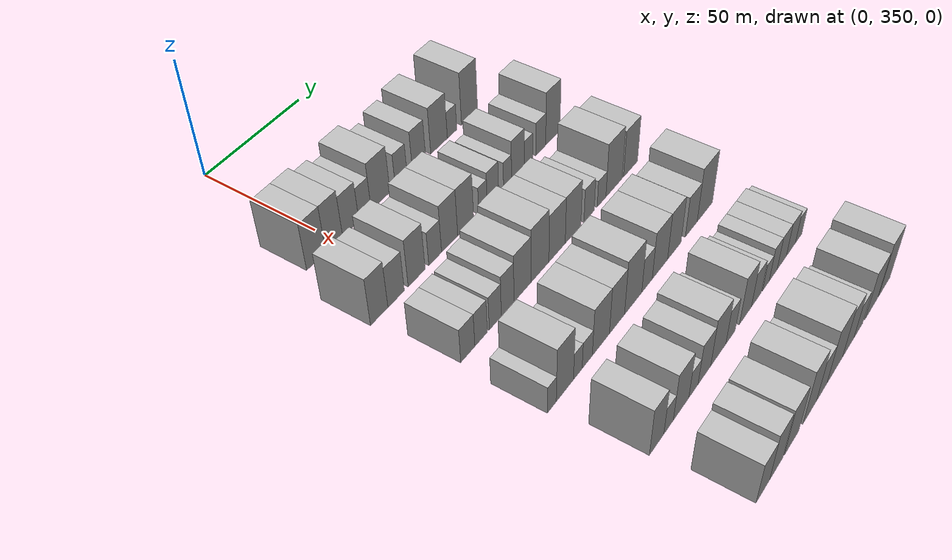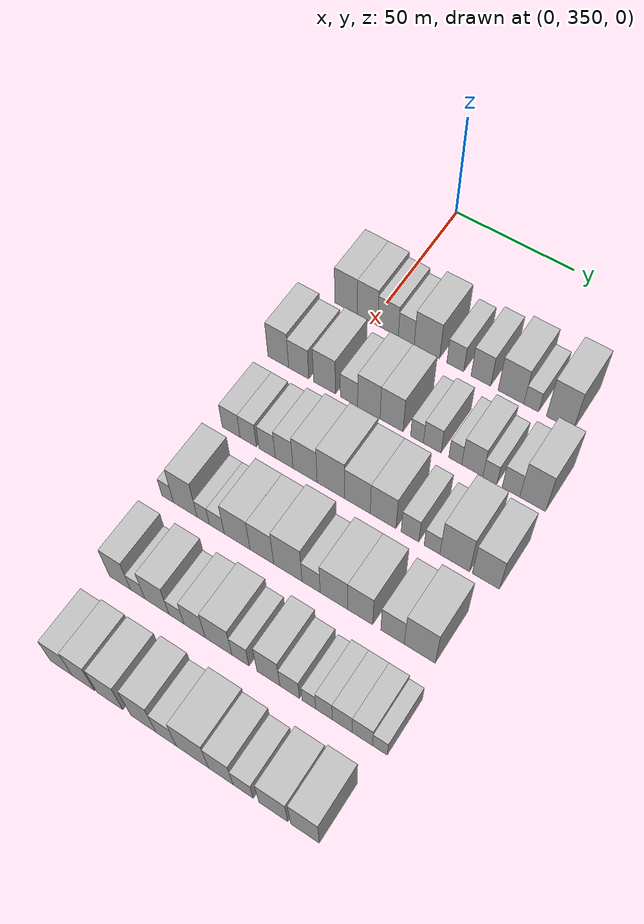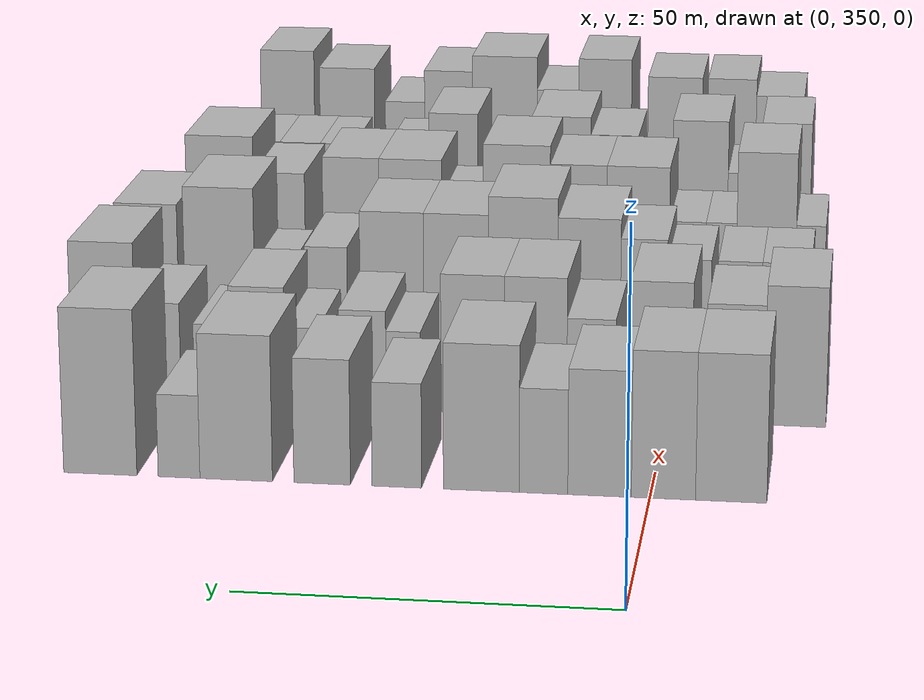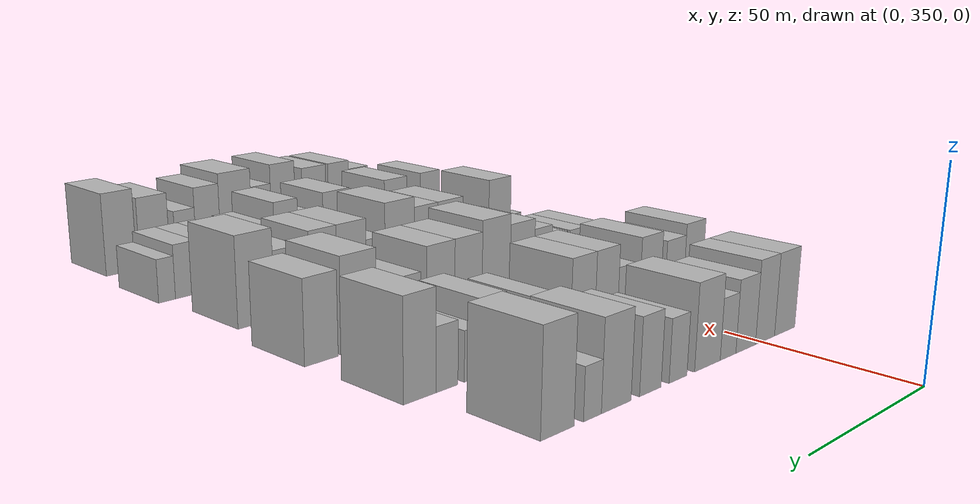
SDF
<sdf version="1.6">
 <world name="default">
  <model name="building_97">
   <static>1</static>
   <pose>50.0000 339.1069 0 0.000000 0.000000 0.000000</pose>
   <link name="link">
    <pose>0 0 10.50 0 0 0</pose>
    <collision name="collision"><geometry><box><size>20.0000 9.6296 21.0000</size></box></geometry></collision>
    <visual name="visual">
     <cast_shadows>0</cast_shadows>
     <geometry><box><size>20.0000 9.6296 21.0000</size></box></geometry>
     <material>
      <script>
       <uri>model://HANNAS_wall/materials/scripts</uri>
       <uri>model://HANNAS_wall/materials/textures</uri>
       <name>vrc/HANNAS_wall</name>
      </script>
     </material>
    </visual>
   </link>
  </model>
  <model name="building_98">
   <static>1</static>
   <pose>50.0000 348.2786 0 0.000000 0.000000 0.000000</pose>
   <link name="link">
    <pose>0 0 10.50 0 0 0</pose>
    <collision name="collision"><geometry><box><size>20.0000 8.7138 21.0000</size></box></geometry></collision>
    <visual name="visual">
     <cast_shadows>0</cast_shadows>
     <geometry><box><size>20.0000 8.7138 21.0000</size></box></geometry>
     <material>
      <script>
       <uri>model://HANNAS_wall/materials/scripts</uri>
       <uri>model://HANNAS_wall/materials/textures</uri>
       <name>vrc/HANNAS_wall</name>
      </script>
     </material>
    </visual>
   </link>
  </model>
  <model name="building_99">
   <static>1</static>
   <pose>50.0000 356.9619 0 0.000000 0.000000 0.000000</pose>
   <link name="link">
    <pose>0 0 9.00 0 0 0</pose>
    <collision name="collision"><geometry><box><size>20.0000 8.6529 18.0000</size></box></geometry></collision>
    <visual name="visual">
     <cast_shadows>0</cast_shadows>
     <geometry><box><size>20.0000 8.6529 18.0000</size></box></geometry>
     <material>
      <script>
       <uri>model://HANNAS_wall/materials/scripts</uri>
       <uri>model://HANNAS_wall/materials/textures</uri>
       <name>vrc/HANNAS_wall</name>
      </script>
     </material>
    </visual>
   </link>
  </model>
  <model name="building_100">
   <static>1</static>
   <pose>50.0000 364.6082 0 0.000000 0.000000 0.000000</pose>
   <link name="link">
    <pose>0 0 7.50 0 0 0</pose>
    <collision name="collision"><geometry><box><size>20.0000 6.6396 15.0000</size></box></geometry></collision>
    <visual name="visual">
     <cast_shadows>0</cast_shadows>
     <geometry><box><size>20.0000 6.6396 15.0000</size></box></geometry>
     <material>
      <script>
       <uri>model://HANNAS_wall/materials/scripts</uri>
       <uri>model://HANNAS_wall/materials/textures</uri>
       <name>vrc/HANNAS_wall</name>
      </script>
     </material>
    </visual>
   </link>
  </model>
  <model name="building_101">
   <static>1</static>
   <pose>50.0000 373.1488 0 0.000000 0.000000 0.000000</pose>
   <link name="link">
    <pose>0 0 10.50 0 0 0</pose>
    <collision name="collision"><geometry><box><size>20.0000 10.4415 21.0000</size></box></geometry></collision>
    <visual name="visual">
     <cast_shadows>0</cast_shadows>
     <geometry><box><size>20.0000 10.4415 21.0000</size></box></geometry>
     <material>
      <script>
       <uri>model://HANNAS_wall/materials/scripts</uri>
       <uri>model://HANNAS_wall/materials/textures</uri>
       <name>vrc/HANNAS_wall</name>
      </script>
     </material>
    </visual>
   </link>
  </model>
  <model name="building_102">
   <static>1</static>
   <pose>50.0000 384.7958 0 0.000000 0.000000 0.000000</pose>
   <link name="link">
    <pose>0 0 7.50 0 0 0</pose>
    <collision name="collision"><geometry><box><size>20.0000 6.8526 15.0000</size></box></geometry></collision>
    <visual name="visual">
     <cast_shadows>0</cast_shadows>
     <geometry><box><size>20.0000 6.8526 15.0000</size></box></geometry>
     <material>
      <script>
       <uri>model://HANNAS_wall/materials/scripts</uri>
       <uri>model://HANNAS_wall/materials/textures</uri>
       <name>vrc/HANNAS_wall</name>
      </script>
     </material>
    </visual>
   </link>
  </model>
  <model name="building_103">
   <static>1</static>
   <pose>50.0000 395.1527 0 0.000000 0.000000 0.000000</pose>
   <link name="link">
    <pose>0 0 9.00 0 0 0</pose>
    <collision name="collision"><geometry><box><size>20.0000 7.8612 18.0000</size></box></geometry></collision>
    <visual name="visual">
     <cast_shadows>0</cast_shadows>
     <geometry><box><size>20.0000 7.8612 18.0000</size></box></geometry>
     <material>
      <script>
       <uri>model://HANNAS_wall/materials/scripts</uri>
       <uri>model://HANNAS_wall/materials/textures</uri>
       <name>vrc/HANNAS_wall</name>
      </script>
     </material>
    </visual>
   </link>
  </model>
  <model name="building_104">
   <static>1</static>
   <pose>50.0000 407.1559 0 0.000000 0.000000 0.000000</pose>
   <link name="link">
    <pose>0 0 10.50 0 0 0</pose>
    <collision name="collision"><geometry><box><size>20.0000 10.1452 21.0000</size></box></geometry></collision>
    <visual name="visual">
     <cast_shadows>0</cast_shadows>
     <geometry><box><size>20.0000 10.1452 21.0000</size></box></geometry>
     <material>
      <script>
       <uri>model://HANNAS_wall/materials/scripts</uri>
       <uri>model://HANNAS_wall/materials/textures</uri>
       <name>vrc/HANNAS_wall</name>
      </script>
     </material>
    </visual>
   </link>
  </model>
  <model name="building_105">
   <static>1</static>
   <pose>50.0000 415.1613 0 0.000000 0.000000 0.000000</pose>
   <link name="link">
    <pose>0 0 6.00 0 0 0</pose>
    <collision name="collision"><geometry><box><size>20.0000 5.8655 12.0000</size></box></geometry></collision>
    <visual name="visual">
     <cast_shadows>0</cast_shadows>
     <geometry><box><size>20.0000 5.8655 12.0000</size></box></geometry>
     <material>
      <script>
       <uri>model://HANNAS_wall/materials/scripts</uri>
       <uri>model://HANNAS_wall/materials/textures</uri>
       <name>vrc/HANNAS_wall</name>
      </script>
     </material>
    </visual>
   </link>
  </model>
  <model name="building_106">
   <static>1</static>
   <pose>50.0000 426.2678 0 0.000000 0.000000 0.000000</pose>
   <link name="link">
    <pose>0 0 12.00 0 0 0</pose>
    <collision name="collision"><geometry><box><size>20.0000 10.3475 24.0000</size></box></geometry></collision>
    <visual name="visual">
     <cast_shadows>0</cast_shadows>
     <geometry><box><size>20.0000 10.3475 24.0000</size></box></geometry>
     <material>
      <script>
       <uri>model://HANNAS_wall/materials/scripts</uri>
       <uri>model://HANNAS_wall/materials/textures</uri>
       <name>vrc/HANNAS_wall</name>
      </script>
     </material>
    </visual>
   </link>
  </model>
  <model name="building_218">
   <static>1</static>
   <pose>82.0000 331.5340 0 0.000000 0.000000 0.000000</pose>
   <link name="link">
    <pose>0 0 10.50 0 0 0</pose>
    <collision name="collision"><geometry><box><size>20.0000 8.8198 21.0000</size></box></geometry></collision>
    <visual name="visual">
     <cast_shadows>0</cast_shadows>
     <geometry><box><size>20.0000 8.8198 21.0000</size></box></geometry>
     <material>
      <script>
       <uri>model://HANNAS_wall/materials/scripts</uri>
       <uri>model://HANNAS_wall/materials/textures</uri>
       <name>vrc/HANNAS_wall</name>
      </script>
     </material>
    </visual>
   </link>
  </model>
  <model name="building_219">
   <static>1</static>
   <pose>82.0000 340.1978 0 0.000000 0.000000 0.000000</pose>
   <link name="link">
    <pose>0 0 9.00 0 0 0</pose>
    <collision name="collision"><geometry><box><size>20.0000 8.5077 18.0000</size></box></geometry></collision>
    <visual name="visual">
     <cast_shadows>0</cast_shadows>
     <geometry><box><size>20.0000 8.5077 18.0000</size></box></geometry>
     <material>
      <script>
       <uri>model://HANNAS_wall/materials/scripts</uri>
       <uri>model://HANNAS_wall/materials/textures</uri>
       <name>vrc/HANNAS_wall</name>
      </script>
     </material>
    </visual>
   </link>
  </model>
  <model name="building_220">
   <static>1</static>
   <pose>82.0000 351.0111 0 0.000000 0.000000 0.000000</pose>
   <link name="link">
    <pose>0 0 10.50 0 0 0</pose>
    <collision name="collision"><geometry><box><size>20.0000 9.1188 21.0000</size></box></geometry></collision>
    <visual name="visual">
     <cast_shadows>0</cast_shadows>
     <geometry><box><size>20.0000 9.1188 21.0000</size></box></geometry>
     <material>
      <script>
       <uri>model://HANNAS_wall/materials/scripts</uri>
       <uri>model://HANNAS_wall/materials/textures</uri>
       <name>vrc/HANNAS_wall</name>
      </script>
     </material>
    </visual>
   </link>
  </model>
  <model name="building_221">
   <static>1</static>
   <pose>82.0000 361.1053 0 0.000000 0.000000 0.000000</pose>
   <link name="link">
    <pose>0 0 7.50 0 0 0</pose>
    <collision name="collision"><geometry><box><size>20.0000 7.0697 15.0000</size></box></geometry></collision>
    <visual name="visual">
     <cast_shadows>0</cast_shadows>
     <geometry><box><size>20.0000 7.0697 15.0000</size></box></geometry>
     <material>
      <script>
       <uri>model://HANNAS_wall/materials/scripts</uri>
       <uri>model://HANNAS_wall/materials/textures</uri>
       <name>vrc/HANNAS_wall</name>
      </script>
     </material>
    </visual>
   </link>
  </model>
  <model name="building_222">
   <static>1</static>
   <pose>82.0000 369.2116 0 0.000000 0.000000 0.000000</pose>
   <link name="link">
    <pose>0 0 10.50 0 0 0</pose>
    <collision name="collision"><geometry><box><size>20.0000 9.1430 21.0000</size></box></geometry></collision>
    <visual name="visual">
     <cast_shadows>0</cast_shadows>
     <geometry><box><size>20.0000 9.1430 21.0000</size></box></geometry>
     <material>
      <script>
       <uri>model://HANNAS_wall/materials/scripts</uri>
       <uri>model://HANNAS_wall/materials/textures</uri>
       <name>vrc/HANNAS_wall</name>
      </script>
     </material>
    </visual>
   </link>
  </model>
  <model name="building_223">
   <static>1</static>
   <pose>82.0000 378.4392 0 0.000000 0.000000 0.000000</pose>
   <link name="link">
    <pose>0 0 10.50 0 0 0</pose>
    <collision name="collision"><geometry><box><size>20.0000 9.3122 21.0000</size></box></geometry></collision>
    <visual name="visual">
     <cast_shadows>0</cast_shadows>
     <geometry><box><size>20.0000 9.3122 21.0000</size></box></geometry>
     <material>
      <script>
       <uri>model://HANNAS_wall/materials/scripts</uri>
       <uri>model://HANNAS_wall/materials/textures</uri>
       <name>vrc/HANNAS_wall</name>
      </script>
     </material>
    </visual>
   </link>
  </model>
  <model name="building_224">
   <static>1</static>
   <pose>82.0000 388.6367 0 0.000000 0.000000 0.000000</pose>
   <link name="link">
    <pose>0 0 6.00 0 0 0</pose>
    <collision name="collision"><geometry><box><size>20.0000 5.0829 12.0000</size></box></geometry></collision>
    <visual name="visual">
     <cast_shadows>0</cast_shadows>
     <geometry><box><size>20.0000 5.0829 12.0000</size></box></geometry>
     <material>
      <script>
       <uri>model://HANNAS_wall/materials/scripts</uri>
       <uri>model://HANNAS_wall/materials/textures</uri>
       <name>vrc/HANNAS_wall</name>
      </script>
     </material>
    </visual>
   </link>
  </model>
  <model name="building_225">
   <static>1</static>
   <pose>82.0000 394.6690 0 0.000000 0.000000 0.000000</pose>
   <link name="link">
    <pose>0 0 7.50 0 0 0</pose>
    <collision name="collision"><geometry><box><size>20.0000 6.9817 15.0000</size></box></geometry></collision>
    <visual name="visual">
     <cast_shadows>0</cast_shadows>
     <geometry><box><size>20.0000 6.9817 15.0000</size></box></geometry>
     <material>
      <script>
       <uri>model://HANNAS_wall/materials/scripts</uri>
       <uri>model://HANNAS_wall/materials/textures</uri>
       <name>vrc/HANNAS_wall</name>
      </script>
     </material>
    </visual>
   </link>
  </model>
  <model name="building_226">
   <static>1</static>
   <pose>82.0000 403.6852 0 0.000000 0.000000 0.000000</pose>
   <link name="link">
    <pose>0 0 6.00 0 0 0</pose>
    <collision name="collision"><geometry><box><size>20.0000 5.0506 12.0000</size></box></geometry></collision>
    <visual name="visual">
     <cast_shadows>0</cast_shadows>
     <geometry><box><size>20.0000 5.0506 12.0000</size></box></geometry>
     <material>
      <script>
       <uri>model://HANNAS_wall/materials/scripts</uri>
       <uri>model://HANNAS_wall/materials/textures</uri>
       <name>vrc/HANNAS_wall</name>
      </script>
     </material>
    </visual>
   </link>
  </model>
  <model name="building_227">
   <static>1</static>
   <pose>82.0000 410.3026 0 0.000000 0.000000 0.000000</pose>
   <link name="link">
    <pose>0 0 9.00 0 0 0</pose>
    <collision name="collision"><geometry><box><size>20.0000 8.1843 18.0000</size></box></geometry></collision>
    <visual name="visual">
     <cast_shadows>0</cast_shadows>
     <geometry><box><size>20.0000 8.1843 18.0000</size></box></geometry>
     <material>
      <script>
       <uri>model://HANNAS_wall/materials/scripts</uri>
       <uri>model://HANNAS_wall/materials/textures</uri>
       <name>vrc/HANNAS_wall</name>
      </script>
     </material>
    </visual>
   </link>
  </model>
  <model name="building_228">
   <static>1</static>
   <pose>82.0000 417.0681 0 0.000000 0.000000 0.000000</pose>
   <link name="link">
    <pose>0 0 6.00 0 0 0</pose>
    <collision name="collision"><geometry><box><size>20.0000 5.3469 12.0000</size></box></geometry></collision>
    <visual name="visual">
     <cast_shadows>0</cast_shadows>
     <geometry><box><size>20.0000 5.3469 12.0000</size></box></geometry>
     <material>
      <script>
       <uri>model://HANNAS_wall/materials/scripts</uri>
       <uri>model://HANNAS_wall/materials/textures</uri>
       <name>vrc/HANNAS_wall</name>
      </script>
     </material>
    </visual>
   </link>
  </model>
  <model name="building_229">
   <static>1</static>
   <pose>82.0000 425.0925 0 0.000000 0.000000 0.000000</pose>
   <link name="link">
    <pose>0 0 7.50 0 0 0</pose>
    <collision name="collision"><geometry><box><size>20.0000 6.7019 15.0000</size></box></geometry></collision>
    <visual name="visual">
     <cast_shadows>0</cast_shadows>
     <geometry><box><size>20.0000 6.7019 15.0000</size></box></geometry>
     <material>
      <script>
       <uri>model://HANNAS_wall/materials/scripts</uri>
       <uri>model://HANNAS_wall/materials/textures</uri>
       <name>vrc/HANNAS_wall</name>
      </script>
     </material>
    </visual>
   </link>
  </model>
  <model name="building_230">
   <static>1</static>
   <pose>82.0000 433.2831 0 0.000000 0.000000 0.000000</pose>
   <link name="link">
    <pose>0 0 12.00 0 0 0</pose>
    <collision name="collision"><geometry><box><size>20.0000 9.6793 24.0000</size></box></geometry></collision>
    <visual name="visual">
     <cast_shadows>0</cast_shadows>
     <geometry><box><size>20.0000 9.6793 24.0000</size></box></geometry>
     <material>
      <script>
       <uri>model://HANNAS_wall/materials/scripts</uri>
       <uri>model://HANNAS_wall/materials/textures</uri>
       <name>vrc/HANNAS_wall</name>
      </script>
     </material>
    </visual>
   </link>
  </model>
  <model name="building_336">
   <static>1</static>
   <pose>114.0000 334.1204 0 0.000000 0.000000 0.000000</pose>
   <link name="link">
    <pose>0 0 7.50 0 0 0</pose>
    <collision name="collision"><geometry><box><size>20.0000 7.4466 15.0000</size></box></geometry></collision>
    <visual name="visual">
     <cast_shadows>0</cast_shadows>
     <geometry><box><size>20.0000 7.4466 15.0000</size></box></geometry>
     <material>
      <script>
       <uri>model://HANNAS_wall/materials/scripts</uri>
       <uri>model://HANNAS_wall/materials/textures</uri>
       <name>vrc/HANNAS_wall</name>
      </script>
     </material>
    </visual>
   </link>
  </model>
  <model name="building_337">
   <static>1</static>
   <pose>114.0000 341.2328 0 0.000000 0.000000 0.000000</pose>
   <link name="link">
    <pose>0 0 7.50 0 0 0</pose>
    <collision name="collision"><geometry><box><size>20.0000 6.7783 15.0000</size></box></geometry></collision>
    <visual name="visual">
     <cast_shadows>0</cast_shadows>
     <geometry><box><size>20.0000 6.7783 15.0000</size></box></geometry>
     <material>
      <script>
       <uri>model://HANNAS_wall/materials/scripts</uri>
       <uri>model://HANNAS_wall/materials/textures</uri>
       <name>vrc/HANNAS_wall</name>
      </script>
     </material>
    </visual>
   </link>
  </model>
  <model name="building_338">
   <static>1</static>
   <pose>114.0000 348.9783 0 0.000000 0.000000 0.000000</pose>
   <link name="link">
    <pose>0 0 7.50 0 0 0</pose>
    <collision name="collision"><geometry><box><size>20.0000 6.7126 15.0000</size></box></geometry></collision>
    <visual name="visual">
     <cast_shadows>0</cast_shadows>
     <geometry><box><size>20.0000 6.7126 15.0000</size></box></geometry>
     <material>
      <script>
       <uri>model://HANNAS_wall/materials/scripts</uri>
       <uri>model://HANNAS_wall/materials/textures</uri>
       <name>vrc/HANNAS_wall</name>
      </script>
     </material>
    </visual>
   </link>
  </model>
  <model name="building_339">
   <static>1</static>
   <pose>114.0000 355.9404 0 0.000000 0.000000 0.000000</pose>
   <link name="link">
    <pose>0 0 9.00 0 0 0</pose>
    <collision name="collision"><geometry><box><size>20.0000 7.2117 18.0000</size></box></geometry></collision>
    <visual name="visual">
     <cast_shadows>0</cast_shadows>
     <geometry><box><size>20.0000 7.2117 18.0000</size></box></geometry>
     <material>
      <script>
       <uri>model://HANNAS_wall/materials/scripts</uri>
       <uri>model://HANNAS_wall/materials/textures</uri>
       <name>vrc/HANNAS_wall</name>
      </script>
     </material>
    </visual>
   </link>
  </model>
  <model name="building_340">
   <static>1</static>
   <pose>114.0000 364.4156 0 0.000000 0.000000 0.000000</pose>
   <link name="link">
    <pose>0 0 10.50 0 0 0</pose>
    <collision name="collision"><geometry><box><size>20.0000 9.7387 21.0000</size></box></geometry></collision>
    <visual name="visual">
     <cast_shadows>0</cast_shadows>
     <geometry><box><size>20.0000 9.7387 21.0000</size></box></geometry>
     <material>
      <script>
       <uri>model://HANNAS_wall/materials/scripts</uri>
       <uri>model://HANNAS_wall/materials/textures</uri>
       <name>vrc/HANNAS_wall</name>
      </script>
     </material>
    </visual>
   </link>
  </model>
  <model name="building_341">
   <static>1</static>
   <pose>114.0000 374.6868 0 0.000000 0.000000 0.000000</pose>
   <link name="link">
    <pose>0 0 12.00 0 0 0</pose>
    <collision name="collision"><geometry><box><size>20.0000 10.8037 24.0000</size></box></geometry></collision>
    <visual name="visual">
     <cast_shadows>0</cast_shadows>
     <geometry><box><size>20.0000 10.8037 24.0000</size></box></geometry>
     <material>
      <script>
       <uri>model://HANNAS_wall/materials/scripts</uri>
       <uri>model://HANNAS_wall/materials/textures</uri>
       <name>vrc/HANNAS_wall</name>
      </script>
     </material>
    </visual>
   </link>
  </model>
  <model name="building_342">
   <static>1</static>
   <pose>114.0000 385.1393 0 0.000000 0.000000 0.000000</pose>
   <link name="link">
    <pose>0 0 10.50 0 0 0</pose>
    <collision name="collision"><geometry><box><size>20.0000 10.1014 21.0000</size></box></geometry></collision>
    <visual name="visual">
     <cast_shadows>0</cast_shadows>
     <geometry><box><size>20.0000 10.1014 21.0000</size></box></geometry>
     <material>
      <script>
       <uri>model://HANNAS_wall/materials/scripts</uri>
       <uri>model://HANNAS_wall/materials/textures</uri>
       <name>vrc/HANNAS_wall</name>
      </script>
     </material>
    </visual>
   </link>
  </model>
  <model name="building_343">
   <static>1</static>
   <pose>114.0000 395.1781 0 0.000000 0.000000 0.000000</pose>
   <link name="link">
    <pose>0 0 10.50 0 0 0</pose>
    <collision name="collision"><geometry><box><size>20.0000 9.9763 21.0000</size></box></geometry></collision>
    <visual name="visual">
     <cast_shadows>0</cast_shadows>
     <geometry><box><size>20.0000 9.9763 21.0000</size></box></geometry>
     <material>
      <script>
       <uri>model://HANNAS_wall/materials/scripts</uri>
       <uri>model://HANNAS_wall/materials/textures</uri>
       <name>vrc/HANNAS_wall</name>
      </script>
     </material>
    </visual>
   </link>
  </model>
  <model name="building_344">
   <static>1</static>
   <pose>114.0000 405.5335 0 0.000000 0.000000 0.000000</pose>
   <link name="link">
    <pose>0 0 7.50 0 0 0</pose>
    <collision name="collision"><geometry><box><size>20.0000 6.7344 15.0000</size></box></geometry></collision>
    <visual name="visual">
     <cast_shadows>0</cast_shadows>
     <geometry><box><size>20.0000 6.7344 15.0000</size></box></geometry>
     <material>
      <script>
       <uri>model://HANNAS_wall/materials/scripts</uri>
       <uri>model://HANNAS_wall/materials/textures</uri>
       <name>vrc/HANNAS_wall</name>
      </script>
     </material>
    </visual>
   </link>
  </model>
  <model name="building_345">
   <static>1</static>
   <pose>114.0000 413.8528 0 0.000000 0.000000 0.000000</pose>
   <link name="link">
    <pose>0 0 6.00 0 0 0</pose>
    <collision name="collision"><geometry><box><size>20.0000 5.9043 12.0000</size></box></geometry></collision>
    <visual name="visual">
     <cast_shadows>0</cast_shadows>
     <geometry><box><size>20.0000 5.9043 12.0000</size></box></geometry>
     <material>
      <script>
       <uri>model://HANNAS_wall/materials/scripts</uri>
       <uri>model://HANNAS_wall/materials/textures</uri>
       <name>vrc/HANNAS_wall</name>
      </script>
     </material>
    </visual>
   </link>
  </model>
  <model name="building_346">
   <static>1</static>
   <pose>114.0000 422.3703 0 0.000000 0.000000 0.000000</pose>
   <link name="link">
    <pose>0 0 12.00 0 0 0</pose>
    <collision name="collision"><geometry><box><size>20.0000 11.1306 24.0000</size></box></geometry></collision>
    <visual name="visual">
     <cast_shadows>0</cast_shadows>
     <geometry><box><size>20.0000 11.1306 24.0000</size></box></geometry>
     <material>
      <script>
       <uri>model://HANNAS_wall/materials/scripts</uri>
       <uri>model://HANNAS_wall/materials/textures</uri>
       <name>vrc/HANNAS_wall</name>
      </script>
     </material>
    </visual>
   </link>
  </model>
  <model name="building_347">
   <static>1</static>
   <pose>114.0000 433.9257 0 0.000000 0.000000 0.000000</pose>
   <link name="link">
    <pose>0 0 10.50 0 0 0</pose>
    <collision name="collision"><geometry><box><size>20.0000 9.9802 21.0000</size></box></geometry></collision>
    <visual name="visual">
     <cast_shadows>0</cast_shadows>
     <geometry><box><size>20.0000 9.9802 21.0000</size></box></geometry>
     <material>
      <script>
       <uri>model://HANNAS_wall/materials/scripts</uri>
       <uri>model://HANNAS_wall/materials/textures</uri>
       <name>vrc/HANNAS_wall</name>
      </script>
     </material>
    </visual>
   </link>
  </model>
  <model name="building_455">
   <static>1</static>
   <pose>146.0000 331.2676 0 0.000000 0.000000 0.000000</pose>
   <link name="link">
    <pose>0 0 6.00 0 0 0</pose>
    <collision name="collision"><geometry><box><size>20.0000 4.8127 12.0000</size></box></geometry></collision>
    <visual name="visual">
     <cast_shadows>0</cast_shadows>
     <geometry><box><size>20.0000 4.8127 12.0000</size></box></geometry>
     <material>
      <script>
       <uri>model://HANNAS_wall/materials/scripts</uri>
       <uri>model://HANNAS_wall/materials/textures</uri>
       <name>vrc/HANNAS_wall</name>
      </script>
     </material>
    </visual>
   </link>
  </model>
  <model name="building_456">
   <static>1</static>
   <pose>146.0000 338.4947 0 0.000000 0.000000 0.000000</pose>
   <link name="link">
    <pose>0 0 12.00 0 0 0</pose>
    <collision name="collision"><geometry><box><size>20.0000 9.6414 24.0000</size></box></geometry></collision>
    <visual name="visual">
     <cast_shadows>0</cast_shadows>
     <geometry><box><size>20.0000 9.6414 24.0000</size></box></geometry>
     <material>
      <script>
       <uri>model://HANNAS_wall/materials/scripts</uri>
       <uri>model://HANNAS_wall/materials/textures</uri>
       <name>vrc/HANNAS_wall</name>
      </script>
     </material>
    </visual>
   </link>
  </model>
  <model name="building_457">
   <static>1</static>
   <pose>146.0000 345.8057 0 0.000000 0.000000 0.000000</pose>
   <link name="link">
    <pose>0 0 6.00 0 0 0</pose>
    <collision name="collision"><geometry><box><size>20.0000 4.9807 12.0000</size></box></geometry></collision>
    <visual name="visual">
     <cast_shadows>0</cast_shadows>
     <geometry><box><size>20.0000 4.9807 12.0000</size></box></geometry>
     <material>
      <script>
       <uri>model://HANNAS_wall/materials/scripts</uri>
       <uri>model://HANNAS_wall/materials/textures</uri>
       <name>vrc/HANNAS_wall</name>
      </script>
     </material>
    </visual>
   </link>
  </model>
  <model name="building_458">
   <static>1</static>
   <pose>146.0000 351.2822 0 0.000000 0.000000 0.000000</pose>
   <link name="link">
    <pose>0 0 6.00 0 0 0</pose>
    <collision name="collision"><geometry><box><size>20.0000 5.9722 12.0000</size></box></geometry></collision>
    <visual name="visual">
     <cast_shadows>0</cast_shadows>
     <geometry><box><size>20.0000 5.9722 12.0000</size></box></geometry>
     <material>
      <script>
       <uri>model://HANNAS_wall/materials/scripts</uri>
       <uri>model://HANNAS_wall/materials/textures</uri>
       <name>vrc/HANNAS_wall</name>
      </script>
     </material>
    </visual>
   </link>
  </model>
  <model name="building_459">
   <static>1</static>
   <pose>146.0000 359.3987 0 0.000000 0.000000 0.000000</pose>
   <link name="link">
    <pose>0 0 10.50 0 0 0</pose>
    <collision name="collision"><geometry><box><size>20.0000 10.2609 21.0000</size></box></geometry></collision>
    <visual name="visual">
     <cast_shadows>0</cast_shadows>
     <geometry><box><size>20.0000 10.2609 21.0000</size></box></geometry>
     <material>
      <script>
       <uri>model://HANNAS_wall/materials/scripts</uri>
       <uri>model://HANNAS_wall/materials/textures</uri>
       <name>vrc/HANNAS_wall</name>
      </script>
     </material>
    </visual>
   </link>
  </model>
  <model name="building_460">
   <static>1</static>
   <pose>146.0000 369.1812 0 0.000000 0.000000 0.000000</pose>
   <link name="link">
    <pose>0 0 10.50 0 0 0</pose>
    <collision name="collision"><geometry><box><size>20.0000 9.3040 21.0000</size></box></geometry></collision>
    <visual name="visual">
     <cast_shadows>0</cast_shadows>
     <geometry><box><size>20.0000 9.3040 21.0000</size></box></geometry>
     <material>
      <script>
       <uri>model://HANNAS_wall/materials/scripts</uri>
       <uri>model://HANNAS_wall/materials/textures</uri>
       <name>vrc/HANNAS_wall</name>
      </script>
     </material>
    </visual>
   </link>
  </model>
  <model name="building_461">
   <static>1</static>
   <pose>146.0000 379.3501 0 0.000000 0.000000 0.000000</pose>
   <link name="link">
    <pose>0 0 12.00 0 0 0</pose>
    <collision name="collision"><geometry><box><size>20.0000 11.0336 24.0000</size></box></geometry></collision>
    <visual name="visual">
     <cast_shadows>0</cast_shadows>
     <geometry><box><size>20.0000 11.0336 24.0000</size></box></geometry>
     <material>
      <script>
       <uri>model://HANNAS_wall/materials/scripts</uri>
       <uri>model://HANNAS_wall/materials/textures</uri>
       <name>vrc/HANNAS_wall</name>
      </script>
     </material>
    </visual>
   </link>
  </model>
  <model name="building_462">
   <static>1</static>
   <pose>146.0000 388.3175 0 0.000000 0.000000 0.000000</pose>
   <link name="link">
    <pose>0 0 7.50 0 0 0</pose>
    <collision name="collision"><geometry><box><size>20.0000 6.9013 15.0000</size></box></geometry></collision>
    <visual name="visual">
     <cast_shadows>0</cast_shadows>
     <geometry><box><size>20.0000 6.9013 15.0000</size></box></geometry>
     <material>
      <script>
       <uri>model://HANNAS_wall/materials/scripts</uri>
       <uri>model://HANNAS_wall/materials/textures</uri>
       <name>vrc/HANNAS_wall</name>
      </script>
     </material>
    </visual>
   </link>
  </model>
  <model name="building_463">
   <static>1</static>
   <pose>146.0000 396.9417 0 0.000000 0.000000 0.000000</pose>
   <link name="link">
    <pose>0 0 10.50 0 0 0</pose>
    <collision name="collision"><geometry><box><size>20.0000 10.3471 21.0000</size></box></geometry></collision>
    <visual name="visual">
     <cast_shadows>0</cast_shadows>
     <geometry><box><size>20.0000 10.3471 21.0000</size></box></geometry>
     <material>
      <script>
       <uri>model://HANNAS_wall/materials/scripts</uri>
       <uri>model://HANNAS_wall/materials/textures</uri>
       <name>vrc/HANNAS_wall</name>
      </script>
     </material>
    </visual>
   </link>
  </model>
  <model name="building_464">
   <static>1</static>
   <pose>146.0000 406.8110 0 0.000000 0.000000 0.000000</pose>
   <link name="link">
    <pose>0 0 10.50 0 0 0</pose>
    <collision name="collision"><geometry><box><size>20.0000 9.3915 21.0000</size></box></geometry></collision>
    <visual name="visual">
     <cast_shadows>0</cast_shadows>
     <geometry><box><size>20.0000 9.3915 21.0000</size></box></geometry>
     <material>
      <script>
       <uri>model://HANNAS_wall/materials/scripts</uri>
       <uri>model://HANNAS_wall/materials/textures</uri>
       <name>vrc/HANNAS_wall</name>
      </script>
     </material>
    </visual>
   </link>
  </model>
  <model name="building_465">
   <static>1</static>
   <pose>146.0000 418.7842 0 0.000000 0.000000 0.000000</pose>
   <link name="link">
    <pose>0 0 9.00 0 0 0</pose>
    <collision name="collision"><geometry><box><size>20.0000 8.5548 18.0000</size></box></geometry></collision>
    <visual name="visual">
     <cast_shadows>0</cast_shadows>
     <geometry><box><size>20.0000 8.5548 18.0000</size></box></geometry>
     <material>
      <script>
       <uri>model://HANNAS_wall/materials/scripts</uri>
       <uri>model://HANNAS_wall/materials/textures</uri>
       <name>vrc/HANNAS_wall</name>
      </script>
     </material>
    </visual>
   </link>
  </model>
  <model name="building_466">
   <static>1</static>
   <pose>146.0000 428.7135 0 0.000000 0.000000 0.000000</pose>
   <link name="link">
    <pose>0 0 12.00 0 0 0</pose>
    <collision name="collision"><geometry><box><size>20.0000 11.3038 24.0000</size></box></geometry></collision>
    <visual name="visual">
     <cast_shadows>0</cast_shadows>
     <geometry><box><size>20.0000 11.3038 24.0000</size></box></geometry>
     <material>
      <script>
       <uri>model://HANNAS_wall/materials/scripts</uri>
       <uri>model://HANNAS_wall/materials/textures</uri>
       <name>vrc/HANNAS_wall</name>
      </script>
     </material>
    </visual>
   </link>
  </model>
  <model name="building_570">
   <static>1</static>
   <pose>178.0000 336.4228 0 0.000000 0.000000 0.000000</pose>
   <link name="link">
    <pose>0 0 10.50 0 0 0</pose>
    <collision name="collision"><geometry><box><size>20.0000 8.4716 21.0000</size></box></geometry></collision>
    <visual name="visual">
     <cast_shadows>0</cast_shadows>
     <geometry><box><size>20.0000 8.4716 21.0000</size></box></geometry>
     <material>
      <script>
       <uri>model://HANNAS_wall/materials/scripts</uri>
       <uri>model://HANNAS_wall/materials/textures</uri>
       <name>vrc/HANNAS_wall</name>
      </script>
     </material>
    </visual>
   </link>
  </model>
  <model name="building_571">
   <static>1</static>
   <pose>178.0000 343.5299 0 0.000000 0.000000 0.000000</pose>
   <link name="link">
    <pose>0 0 6.00 0 0 0</pose>
    <collision name="collision"><geometry><box><size>20.0000 5.7426 12.0000</size></box></geometry></collision>
    <visual name="visual">
     <cast_shadows>0</cast_shadows>
     <geometry><box><size>20.0000 5.7426 12.0000</size></box></geometry>
     <material>
      <script>
       <uri>model://HANNAS_wall/materials/scripts</uri>
       <uri>model://HANNAS_wall/materials/textures</uri>
       <name>vrc/HANNAS_wall</name>
      </script>
     </material>
    </visual>
   </link>
  </model>
  <model name="building_572">
   <static>1</static>
   <pose>178.0000 351.1847 0 0.000000 0.000000 0.000000</pose>
   <link name="link">
    <pose>0 0 10.50 0 0 0</pose>
    <collision name="collision"><geometry><box><size>20.0000 9.5672 21.0000</size></box></geometry></collision>
    <visual name="visual">
     <cast_shadows>0</cast_shadows>
     <geometry><box><size>20.0000 9.5672 21.0000</size></box></geometry>
     <material>
      <script>
       <uri>model://HANNAS_wall/materials/scripts</uri>
       <uri>model://HANNAS_wall/materials/textures</uri>
       <name>vrc/HANNAS_wall</name>
      </script>
     </material>
    </visual>
   </link>
  </model>
  <model name="building_573">
   <static>1</static>
   <pose>178.0000 358.9233 0 0.000000 0.000000 0.000000</pose>
   <link name="link">
    <pose>0 0 6.00 0 0 0</pose>
    <collision name="collision"><geometry><box><size>20.0000 5.9100 12.0000</size></box></geometry></collision>
    <visual name="visual">
     <cast_shadows>0</cast_shadows>
     <geometry><box><size>20.0000 5.9100 12.0000</size></box></geometry>
     <material>
      <script>
       <uri>model://HANNAS_wall/materials/scripts</uri>
       <uri>model://HANNAS_wall/materials/textures</uri>
       <name>vrc/HANNAS_wall</name>
      </script>
     </material>
    </visual>
   </link>
  </model>
  <model name="building_574">
   <static>1</static>
   <pose>178.0000 365.9992 0 0.000000 0.000000 0.000000</pose>
   <link name="link">
    <pose>0 0 9.00 0 0 0</pose>
    <collision name="collision"><geometry><box><size>20.0000 8.2418 18.0000</size></box></geometry></collision>
    <visual name="visual">
     <cast_shadows>0</cast_shadows>
     <geometry><box><size>20.0000 8.2418 18.0000</size></box></geometry>
     <material>
      <script>
       <uri>model://HANNAS_wall/materials/scripts</uri>
       <uri>model://HANNAS_wall/materials/textures</uri>
       <name>vrc/HANNAS_wall</name>
      </script>
     </material>
    </visual>
   </link>
  </model>
  <model name="building_575">
   <static>1</static>
   <pose>178.0000 375.2222 0 0.000000 0.000000 0.000000</pose>
   <link name="link">
    <pose>0 0 10.50 0 0 0</pose>
    <collision name="collision"><geometry><box><size>20.0000 10.2041 21.0000</size></box></geometry></collision>
    <visual name="visual">
     <cast_shadows>0</cast_shadows>
     <geometry><box><size>20.0000 10.2041 21.0000</size></box></geometry>
     <material>
      <script>
       <uri>model://HANNAS_wall/materials/scripts</uri>
       <uri>model://HANNAS_wall/materials/textures</uri>
       <name>vrc/HANNAS_wall</name>
      </script>
     </material>
    </visual>
   </link>
  </model>
  <model name="building_576">
   <static>1</static>
   <pose>178.0000 383.5419 0 0.000000 0.000000 0.000000</pose>
   <link name="link">
    <pose>0 0 7.50 0 0 0</pose>
    <collision name="collision"><geometry><box><size>20.0000 6.4354 15.0000</size></box></geometry></collision>
    <visual name="visual">
     <cast_shadows>0</cast_shadows>
     <geometry><box><size>20.0000 6.4354 15.0000</size></box></geometry>
     <material>
      <script>
       <uri>model://HANNAS_wall/materials/scripts</uri>
       <uri>model://HANNAS_wall/materials/textures</uri>
       <name>vrc/HANNAS_wall</name>
      </script>
     </material>
    </visual>
   </link>
  </model>
  <model name="building_577">
   <static>1</static>
   <pose>178.0000 394.0394 0 0.000000 0.000000 0.000000</pose>
   <link name="link">
    <pose>0 0 10.50 0 0 0</pose>
    <collision name="collision"><geometry><box><size>20.0000 8.5597 21.0000</size></box></geometry></collision>
    <visual name="visual">
     <cast_shadows>0</cast_shadows>
     <geometry><box><size>20.0000 8.5597 21.0000</size></box></geometry>
     <material>
      <script>
       <uri>model://HANNAS_wall/materials/scripts</uri>
       <uri>model://HANNAS_wall/materials/textures</uri>
       <name>vrc/HANNAS_wall</name>
      </script>
     </material>
    </visual>
   </link>
  </model>
  <model name="building_578">
   <static>1</static>
   <pose>178.0000 401.9075 0 0.000000 0.000000 0.000000</pose>
   <link name="link">
    <pose>0 0 7.50 0 0 0</pose>
    <collision name="collision"><geometry><box><size>20.0000 7.1765 15.0000</size></box></geometry></collision>
    <visual name="visual">
     <cast_shadows>0</cast_shadows>
     <geometry><box><size>20.0000 7.1765 15.0000</size></box></geometry>
     <material>
      <script>
       <uri>model://HANNAS_wall/materials/scripts</uri>
       <uri>model://HANNAS_wall/materials/textures</uri>
       <name>vrc/HANNAS_wall</name>
      </script>
     </material>
    </visual>
   </link>
  </model>
  <model name="building_579">
   <static>1</static>
   <pose>178.0000 408.9513 0 0.000000 0.000000 0.000000</pose>
   <link name="link">
    <pose>0 0 6.00 0 0 0</pose>
    <collision name="collision"><geometry><box><size>20.0000 4.9110 12.0000</size></box></geometry></collision>
    <visual name="visual">
     <cast_shadows>0</cast_shadows>
     <geometry><box><size>20.0000 4.9110 12.0000</size></box></geometry>
     <material>
      <script>
       <uri>model://HANNAS_wall/materials/scripts</uri>
       <uri>model://HANNAS_wall/materials/textures</uri>
       <name>vrc/HANNAS_wall</name>
      </script>
     </material>
    </visual>
   </link>
  </model>
  <model name="building_580">
   <static>1</static>
   <pose>178.0000 414.4213 0 0.000000 0.000000 0.000000</pose>
   <link name="link">
    <pose>0 0 7.50 0 0 0</pose>
    <collision name="collision"><geometry><box><size>20.0000 6.0290 15.0000</size></box></geometry></collision>
    <visual name="visual">
     <cast_shadows>0</cast_shadows>
     <geometry><box><size>20.0000 6.0290 15.0000</size></box></geometry>
     <material>
      <script>
       <uri>model://HANNAS_wall/materials/scripts</uri>
       <uri>model://HANNAS_wall/materials/textures</uri>
       <name>vrc/HANNAS_wall</name>
      </script>
     </material>
    </visual>
   </link>
  </model>
  <model name="building_581">
   <static>1</static>
   <pose>178.0000 421.0053 0 0.000000 0.000000 0.000000</pose>
   <link name="link">
    <pose>0 0 7.50 0 0 0</pose>
    <collision name="collision"><geometry><box><size>20.0000 7.1390 15.0000</size></box></geometry></collision>
    <visual name="visual">
     <cast_shadows>0</cast_shadows>
     <geometry><box><size>20.0000 7.1390 15.0000</size></box></geometry>
     <material>
      <script>
       <uri>model://HANNAS_wall/materials/scripts</uri>
       <uri>model://HANNAS_wall/materials/textures</uri>
       <name>vrc/HANNAS_wall</name>
      </script>
     </material>
    </visual>
   </link>
  </model>
  <model name="building_582">
   <static>1</static>
   <pose>178.0000 428.1756 0 0.000000 0.000000 0.000000</pose>
   <link name="link">
    <pose>0 0 7.50 0 0 0</pose>
    <collision name="collision"><geometry><box><size>20.0000 7.2015 15.0000</size></box></geometry></collision>
    <visual name="visual">
     <cast_shadows>0</cast_shadows>
     <geometry><box><size>20.0000 7.2015 15.0000</size></box></geometry>
     <material>
      <script>
       <uri>model://HANNAS_wall/materials/scripts</uri>
       <uri>model://HANNAS_wall/materials/textures</uri>
       <name>vrc/HANNAS_wall</name>
      </script>
     </material>
    </visual>
   </link>
  </model>
  <model name="building_583">
   <static>1</static>
   <pose>178.0000 434.3818 0 0.000000 0.000000 0.000000</pose>
   <link name="link">
    <pose>0 0 6.00 0 0 0</pose>
    <collision name="collision"><geometry><box><size>20.0000 5.2110 12.0000</size></box></geometry></collision>
    <visual name="visual">
     <cast_shadows>0</cast_shadows>
     <geometry><box><size>20.0000 5.2110 12.0000</size></box></geometry>
     <material>
      <script>
       <uri>model://HANNAS_wall/materials/scripts</uri>
       <uri>model://HANNAS_wall/materials/textures</uri>
       <name>vrc/HANNAS_wall</name>
      </script>
     </material>
    </visual>
   </link>
  </model>
  <model name="building_688">
   <static>1</static>
   <pose>210.0000 338.7357 0 0.000000 0.000000 0.000000</pose>
   <link name="link">
    <pose>0 0 9.00 0 0 0</pose>
    <collision name="collision"><geometry><box><size>20.0000 8.6136 18.0000</size></box></geometry></collision>
    <visual name="visual">
     <cast_shadows>0</cast_shadows>
     <geometry><box><size>20.0000 8.6136 18.0000</size></box></geometry>
     <material>
      <script>
       <uri>model://HANNAS_wall/materials/scripts</uri>
       <uri>model://HANNAS_wall/materials/textures</uri>
       <name>vrc/HANNAS_wall</name>
      </script>
     </material>
    </visual>
   </link>
  </model>
  <model name="building_689">
   <static>1</static>
   <pose>210.0000 347.4339 0 0.000000 0.000000 0.000000</pose>
   <link name="link">
    <pose>0 0 10.50 0 0 0</pose>
    <collision name="collision"><geometry><box><size>20.0000 8.7828 21.0000</size></box></geometry></collision>
    <visual name="visual">
     <cast_shadows>0</cast_shadows>
     <geometry><box><size>20.0000 8.7828 21.0000</size></box></geometry>
     <material>
      <script>
       <uri>model://HANNAS_wall/materials/scripts</uri>
       <uri>model://HANNAS_wall/materials/textures</uri>
       <name>vrc/HANNAS_wall</name>
      </script>
     </material>
    </visual>
   </link>
  </model>
  <model name="building_690">
   <static>1</static>
   <pose>210.0000 357.7543 0 0.000000 0.000000 0.000000</pose>
   <link name="link">
    <pose>0 0 10.50 0 0 0</pose>
    <collision name="collision"><geometry><box><size>20.0000 9.8580 21.0000</size></box></geometry></collision>
    <visual name="visual">
     <cast_shadows>0</cast_shadows>
     <geometry><box><size>20.0000 9.8580 21.0000</size></box></geometry>
     <material>
      <script>
       <uri>model://HANNAS_wall/materials/scripts</uri>
       <uri>model://HANNAS_wall/materials/textures</uri>
       <name>vrc/HANNAS_wall</name>
      </script>
     </material>
    </visual>
   </link>
  </model>
  <model name="building_691">
   <static>1</static>
   <pose>210.0000 370.4844 0 0.000000 0.000000 0.000000</pose>
   <link name="link">
    <pose>0 0 12.00 0 0 0</pose>
    <collision name="collision"><geometry><box><size>20.0000 9.6022 24.0000</size></box></geometry></collision>
    <visual name="visual">
     <cast_shadows>0</cast_shadows>
     <geometry><box><size>20.0000 9.6022 24.0000</size></box></geometry>
     <material>
      <script>
       <uri>model://HANNAS_wall/materials/scripts</uri>
       <uri>model://HANNAS_wall/materials/textures</uri>
       <name>vrc/HANNAS_wall</name>
      </script>
     </material>
    </visual>
   </link>
  </model>
  <model name="building_692">
   <static>1</static>
   <pose>210.0000 379.1053 0 0.000000 0.000000 0.000000</pose>
   <link name="link">
    <pose>0 0 9.00 0 0 0</pose>
    <collision name="collision"><geometry><box><size>20.0000 7.6396 18.0000</size></box></geometry></collision>
    <visual name="visual">
     <cast_shadows>0</cast_shadows>
     <geometry><box><size>20.0000 7.6396 18.0000</size></box></geometry>
     <material>
      <script>
       <uri>model://HANNAS_wall/materials/scripts</uri>
       <uri>model://HANNAS_wall/materials/textures</uri>
       <name>vrc/HANNAS_wall</name>
      </script>
     </material>
    </visual>
   </link>
  </model>
  <model name="building_693">
   <static>1</static>
   <pose>210.0000 388.8509 0 0.000000 0.000000 0.000000</pose>
   <link name="link">
    <pose>0 0 12.00 0 0 0</pose>
    <collision name="collision"><geometry><box><size>20.0000 11.8517 24.0000</size></box></geometry></collision>
    <visual name="visual">
     <cast_shadows>0</cast_shadows>
     <geometry><box><size>20.0000 11.8517 24.0000</size></box></geometry>
     <material>
      <script>
       <uri>model://HANNAS_wall/materials/scripts</uri>
       <uri>model://HANNAS_wall/materials/textures</uri>
       <name>vrc/HANNAS_wall</name>
      </script>
     </material>
    </visual>
   </link>
  </model>
  <model name="building_694">
   <static>1</static>
   <pose>210.0000 399.2162 0 0.000000 0.000000 0.000000</pose>
   <link name="link">
    <pose>0 0 10.50 0 0 0</pose>
    <collision name="collision"><geometry><box><size>20.0000 8.8790 21.0000</size></box></geometry></collision>
    <visual name="visual">
     <cast_shadows>0</cast_shadows>
     <geometry><box><size>20.0000 8.8790 21.0000</size></box></geometry>
     <material>
      <script>
       <uri>model://HANNAS_wall/materials/scripts</uri>
       <uri>model://HANNAS_wall/materials/textures</uri>
       <name>vrc/HANNAS_wall</name>
      </script>
     </material>
    </visual>
   </link>
  </model>
  <model name="building_695">
   <static>1</static>
   <pose>210.0000 407.2833 0 0.000000 0.000000 0.000000</pose>
   <link name="link">
    <pose>0 0 7.50 0 0 0</pose>
    <collision name="collision"><geometry><box><size>20.0000 7.2551 15.0000</size></box></geometry></collision>
    <visual name="visual">
     <cast_shadows>0</cast_shadows>
     <geometry><box><size>20.0000 7.2551 15.0000</size></box></geometry>
     <material>
      <script>
       <uri>model://HANNAS_wall/materials/scripts</uri>
       <uri>model://HANNAS_wall/materials/textures</uri>
       <name>vrc/HANNAS_wall</name>
      </script>
     </material>
    </visual>
   </link>
  </model>
  <model name="building_696">
   <static>1</static>
   <pose>210.0000 418.0044 0 0.000000 0.000000 0.000000</pose>
   <link name="link">
    <pose>0 0 10.50 0 0 0</pose>
    <collision name="collision"><geometry><box><size>20.0000 10.1873 21.0000</size></box></geometry></collision>
    <visual name="visual">
     <cast_shadows>0</cast_shadows>
     <geometry><box><size>20.0000 10.1873 21.0000</size></box></geometry>
     <material>
      <script>
       <uri>model://HANNAS_wall/materials/scripts</uri>
       <uri>model://HANNAS_wall/materials/textures</uri>
       <name>vrc/HANNAS_wall</name>
      </script>
     </material>
    </visual>
   </link>
  </model>
  <model name="building_697">
   <static>1</static>
   <pose>210.0000 429.0724 0 0.000000 0.000000 0.000000</pose>
   <link name="link">
    <pose>0 0 12.00 0 0 0</pose>
    <collision name="collision"><geometry><box><size>20.0000 9.9486 24.0000</size></box></geometry></collision>
    <visual name="visual">
     <cast_shadows>0</cast_shadows>
     <geometry><box><size>20.0000 9.9486 24.0000</size></box></geometry>
     <material>
      <script>
       <uri>model://HANNAS_wall/materials/scripts</uri>
       <uri>model://HANNAS_wall/materials/textures</uri>
       <name>vrc/HANNAS_wall</name>
      </script>
     </material>
    </visual>
   </link>
  </model>
 </world>
</sdf>
